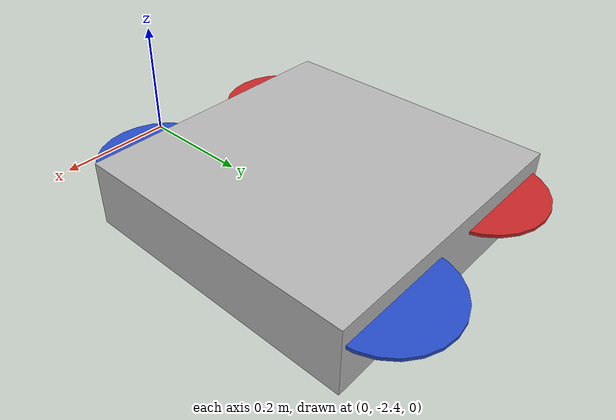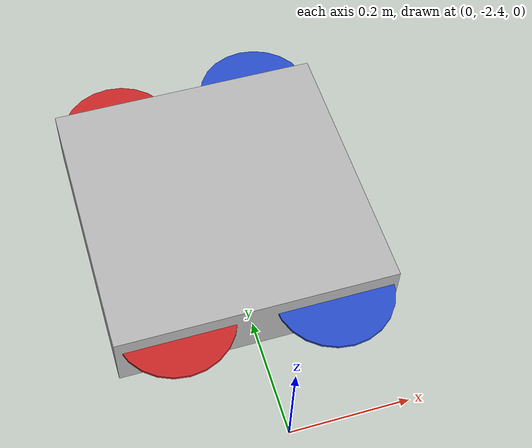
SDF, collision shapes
<?xml version="1.0" encoding="utf-8"?>
<sdf version='1.9'>
  <model name='X3'>
    <pose>0 -2 0.054632 0 -0 0</pose>
    <link name='X3/base_link'>
      <sensor name="ISACAntennaSensor" type="custom" ignition:type="ISACAntenna">
        <always_on>1</always_on>
        <update_rate>30</update_rate>
        <visualize>true</visualize>
        <ignition:ISACAntenna>
            <tx_power_dBm>20.0</tx_power_dBm>            <!-- high power to reach relays -->
            <path_loss_exponent>2.5</path_loss_exponent> <!-- mostly open space inside a building/field -->
            <fading_std>3.0</fading_std>                <!-- small fading since mostly static links -->
            <bandwidth_Hz>5e6</bandwidth_Hz>            <!-- medium bandwidth -->
            <noise_figure_dB>5.0</noise_figure_dB>      <!-- typical device NF -->
        </ignition:ISACAntenna>
      </sensor>
      <pose>0 0 0 0 -0 0</pose>
      <inertial>
        <pose>0 0 0 0 -0 0</pose>
        <mass>1.5</mass>
        <inertia>
          <ixx>0.034756299999999997</ixx>
          <ixy>0</ixy>
          <ixz>0</ixz>
          <iyy>0.070000000000000007</iyy>
          <iyz>0</iyz>
          <izz>0.097699999999999995</izz>
        </inertia>
      </inertial>
      <collision name='X3/base_link_inertia_collision'>
        <pose>0 0 0 0 -0 0</pose>
        <geometry>
          <box>
            <size>0.47 0.47 0.11</size>
          </box>
        </geometry>
        <surface>
          <friction>
            <ode/>
          </friction>
          <bounce/>
          <contact/>
        </surface>
      </collision>
      <visual name='X3/base_link_inertia_visual'>
        <pose>0 0 0 0 -0 0</pose>
        <geometry>
          <mesh>
            <scale>1 1 1</scale>
            <uri>https://fuel.gazebosim.org/1.0/openrobotics/models/x3 uav/4/files/meshes/x3.dae</uri>
          </mesh>
        </geometry>
      </visual>
      <enable_wind>true</enable_wind>
    </link>
    <link name='X3/rotor_0'>
      <pose>0.13 -0.22 0.023 -0 -0 -0</pose>
      <inertial>
        <pose>0 0 0 0 -0 0</pose>
        <mass>0.0050000000000000001</mass>
        <inertia>
          <ixx>9.7499999999999998e-07</ixx>
          <ixy>0</ixy>
          <ixz>0</ixz>
          <iyy>4.1704099999999999e-05</iyy>
          <iyz>0</iyz>
          <izz>4.2604100000000001e-05</izz>
        </inertia>
      </inertial>
      <collision name='X3/rotor_0_collision'>
        <pose>0 0 0 0 -0 0</pose>
        <geometry>
          <cylinder>
            <length>0.0050000000000000001</length>
            <radius>0.10000000000000001</radius>
          </cylinder>
        </geometry>
        <surface>
          <contact>
            <ode/>
          </contact>
          <friction>
            <ode/>
          </friction>
          <bounce/>
        </surface>
      </collision>
      <visual name='X3/rotor_0_visual'>
        <pose>0 0 0 0 -0 0</pose>
        <geometry>
          <mesh>
            <scale>0.1 0.1 0.1</scale>
            <uri>https://fuel.gazebosim.org/1.0/openrobotics/models/x3 uav/4/files/meshes/propeller_ccw.dae</uri>
          </mesh>
        </geometry>
        <material>
          <script>
            <name>Gazebo/Blue</name>
            <uri>file://media/materials/scripts/gazebo.material</uri>
          </script>
        </material>
      </visual>
      <gravity>true</gravity>
      <velocity_decay/>
      <enable_wind>true</enable_wind>
    </link>
    <joint name='X3/rotor_0_joint' type='revolute'>
      <child>X3/rotor_0</child>
      <parent>X3/base_link</parent>
      <axis>
        <xyz>0 0 1</xyz>
        <limit>
          <lower>-10000000000000000</lower>
          <upper>10000000000000000</upper>
          <effort>inf</effort>
          <velocity>inf</velocity>
          <stiffness>100000000</stiffness>
          <dissipation>1</dissipation>
        </limit>
        <dynamics>
          <spring_reference>0</spring_reference>
          <spring_stiffness>0</spring_stiffness>
          <damping>0</damping>
          <friction>0</friction>
        </dynamics>
      </axis>
      <pose>0 0 0 0 -0 0</pose>
    </joint>
    <link name='X3/rotor_1'>
      <pose>-0.13 0.2 0.023 -0 -0 -0</pose>
      <inertial>
        <pose>0 0 0 0 -0 0</pose>
        <mass>0.0050000000000000001</mass>
        <inertia>
          <ixx>9.7499999999999998e-07</ixx>
          <ixy>0</ixy>
          <ixz>0</ixz>
          <iyy>4.1704099999999999e-05</iyy>
          <iyz>0</iyz>
          <izz>4.2604100000000001e-05</izz>
        </inertia>
      </inertial>
      <collision name='X3/rotor_1_collision'>
        <pose>0 0 0 0 -0 0</pose>
        <geometry>
          <cylinder>
            <length>0.0050000000000000001</length>
            <radius>0.10000000000000001</radius>
          </cylinder>
        </geometry>
        <surface>
          <contact>
            <ode/>
          </contact>
          <friction>
            <ode/>
          </friction>
          <bounce/>
        </surface>
      </collision>
      <visual name='X3/rotor_1_visual'>
        <pose>0 0 0 0 -0 0</pose>
        <geometry>
          <mesh>
            <scale>0.1 0.1 0.1</scale>
            <uri>https://fuel.gazebosim.org/1.0/openrobotics/models/x3 uav/4/files/meshes/propeller_ccw.dae</uri>
          </mesh>
        </geometry>
        <material>
          <script>
            <name>Gazebo/Red</name>
            <uri>file://media/materials/scripts/gazebo.material</uri>
          </script>
        </material>
      </visual>
      <gravity>true</gravity>
      <velocity_decay/>
      <enable_wind>true</enable_wind>
    </link>
    <joint name='X3/rotor_1_joint' type='revolute'>
      <child>X3/rotor_1</child>
      <parent>X3/base_link</parent>
      <axis>
        <xyz>0 0 1</xyz>
        <limit>
          <lower>-10000000000000000</lower>
          <upper>10000000000000000</upper>
          <effort>inf</effort>
          <velocity>inf</velocity>
          <stiffness>100000000</stiffness>
          <dissipation>1</dissipation>
        </limit>
        <dynamics>
          <spring_reference>0</spring_reference>
          <spring_stiffness>0</spring_stiffness>
          <damping>0</damping>
          <friction>0</friction>
        </dynamics>
      </axis>
      <pose>0 0 0 0 -0 0</pose>
    </joint>
    <link name='X3/rotor_2'>
      <pose>0.13 0.22 0.023 -0 -0 -0</pose>
      <inertial>
        <pose>0 0 0 0 -0 0</pose>
        <mass>0.0050000000000000001</mass>
        <inertia>
          <ixx>9.7499999999999998e-07</ixx>
          <ixy>0</ixy>
          <ixz>0</ixz>
          <iyy>4.1704099999999999e-05</iyy>
          <iyz>0</iyz>
          <izz>4.2604100000000001e-05</izz>
        </inertia>
      </inertial>
      <collision name='X3/rotor_2_collision'>
        <pose>0 0 0 0 -0 0</pose>
        <geometry>
          <cylinder>
            <length>0.0050000000000000001</length>
            <radius>0.10000000000000001</radius>
          </cylinder>
        </geometry>
        <surface>
          <contact>
            <ode/>
          </contact>
          <friction>
            <ode/>
          </friction>
          <bounce/>
        </surface>
      </collision>
      <visual name='X3/rotor_2_visual'>
        <pose>0 0 0 0 -0 0</pose>
        <geometry>
          <mesh>
            <scale>0.1 0.1 0.1</scale>
            <uri>https://fuel.gazebosim.org/1.0/openrobotics/models/x3 uav/4/files/meshes/propeller_cw.dae</uri>
          </mesh>
        </geometry>
        <material>
          <script>
            <name>Gazebo/Blue</name>
            <uri>file://media/materials/scripts/gazebo.material</uri>
          </script>
        </material>
      </visual>
      <gravity>true</gravity>
      <velocity_decay/>
      <enable_wind>true</enable_wind>
    </link>
    <joint name='X3/rotor_2_joint' type='revolute'>
      <child>X3/rotor_2</child>
      <parent>X3/base_link</parent>
      <axis>
        <xyz>0 0 1</xyz>
        <limit>
          <lower>-10000000000000000</lower>
          <upper>10000000000000000</upper>
          <effort>inf</effort>
          <velocity>inf</velocity>
          <stiffness>100000000</stiffness>
          <dissipation>1</dissipation>
        </limit>
        <dynamics>
          <spring_reference>0</spring_reference>
          <spring_stiffness>0</spring_stiffness>
          <damping>0</damping>
          <friction>0</friction>
        </dynamics>
      </axis>
      <pose>0 0 0 0 -0 0</pose>
    </joint>
    <link name='X3/rotor_3'>
      <pose>-0.13 -0.2 0.023 -0 -0 -0</pose>
      <inertial>
        <pose>0 0 0 0 -0 0</pose>
        <mass>0.0050000000000000001</mass>
        <inertia>
          <ixx>9.7499999999999998e-07</ixx>
          <ixy>0</ixy>
          <ixz>0</ixz>
          <iyy>4.1704099999999999e-05</iyy>
          <iyz>0</iyz>
          <izz>4.2604100000000001e-05</izz>
        </inertia>
      </inertial>
      <collision name='X3/rotor_3_collision'>
        <pose>0 0 0 0 -0 0</pose>
        <geometry>
          <cylinder>
            <length>0.0050000000000000001</length>
            <radius>0.10000000000000001</radius>
          </cylinder>
        </geometry>
        <surface>
          <contact>
            <ode/>
          </contact>
          <friction>
            <ode/>
          </friction>
          <bounce/>
        </surface>
      </collision>
      <visual name='X3/rotor_3_visual'>
        <pose>0 0 0 0 -0 0</pose>
        <geometry>
          <mesh>
            <scale>0.1 0.1 0.1</scale>
            <uri>https://fuel.gazebosim.org/1.0/openrobotics/models/x3 uav/4/files/meshes/propeller_cw.dae</uri>
          </mesh>
        </geometry>
        <material>
          <script>
            <name>Gazebo/Red</name>
            <uri>file://media/materials/scripts/gazebo.material</uri>
          </script>
        </material>
      </visual>
      <gravity>true</gravity>
      <velocity_decay/>
      <enable_wind>true</enable_wind>
    </link>
    <joint name='X3/rotor_3_joint' type='revolute'>
      <child>X3/rotor_3</child>
      <parent>X3/base_link</parent>
      <axis>
        <xyz>0 0 1</xyz>
        <limit>
          <lower>-10000000000000000</lower>
          <upper>10000000000000000</upper>
          <effort>inf</effort>
          <velocity>inf</velocity>
          <stiffness>100000000</stiffness>
          <dissipation>1</dissipation>
        </limit>
        <dynamics>
          <spring_reference>0</spring_reference>
          <spring_stiffness>0</spring_stiffness>
          <damping>0</damping>
          <friction>0</friction>
        </dynamics>
      </axis>
      <pose>0 0 0 0 -0 0</pose>
    </joint>
    <plugin name='ignition::gazebo::systems::MulticopterMotorModel' filename='ignition-gazebo-multicopter-motor-model-system'>
      <robotNamespace>X3</robotNamespace>
      <jointName>X3/rotor_0_joint</jointName>
      <linkName>X3/rotor_0</linkName>
      <turningDirection>ccw</turningDirection>
      <timeConstantUp>0.0125</timeConstantUp>
      <timeConstantDown>0.025</timeConstantDown>
      <maxRotVelocity>800.0</maxRotVelocity>
      <motorConstant>8.54858e-06</motorConstant>
      <momentConstant>0.016</momentConstant>
      <commandSubTopic>gazebo/command/motor_speed</commandSubTopic>
      <motorNumber>0</motorNumber>
      <rotorDragCoefficient>8.06428e-05</rotorDragCoefficient>
      <rollingMomentCoefficient>1e-06</rollingMomentCoefficient>
      <motorSpeedPubTopic>motor_speed/0</motorSpeedPubTopic>
      <rotorVelocitySlowdownSim>10</rotorVelocitySlowdownSim>
      <motorType>velocity</motorType>
    </plugin>
    <plugin name='ignition::gazebo::systems::MulticopterMotorModel' filename='ignition-gazebo-multicopter-motor-model-system'>
      <robotNamespace>X3</robotNamespace>
      <jointName>X3/rotor_1_joint</jointName>
      <linkName>X3/rotor_1</linkName>
      <turningDirection>ccw</turningDirection>
      <timeConstantUp>0.0125</timeConstantUp>
      <timeConstantDown>0.025</timeConstantDown>
      <maxRotVelocity>800.0</maxRotVelocity>
      <motorConstant>8.54858e-06</motorConstant>
      <momentConstant>0.016</momentConstant>
      <commandSubTopic>gazebo/command/motor_speed</commandSubTopic>
      <motorNumber>1</motorNumber>
      <rotorDragCoefficient>8.06428e-05</rotorDragCoefficient>
      <rollingMomentCoefficient>1e-06</rollingMomentCoefficient>
      <motorSpeedPubTopic>motor_speed/1</motorSpeedPubTopic>
      <rotorVelocitySlowdownSim>10</rotorVelocitySlowdownSim>
      <motorType>velocity</motorType>
    </plugin>
    <plugin name='ignition::gazebo::systems::MulticopterMotorModel' filename='ignition-gazebo-multicopter-motor-model-system'>
      <robotNamespace>X3</robotNamespace>
      <jointName>X3/rotor_2_joint</jointName>
      <linkName>X3/rotor_2</linkName>
      <turningDirection>cw</turningDirection>
      <timeConstantUp>0.0125</timeConstantUp>
      <timeConstantDown>0.025</timeConstantDown>
      <maxRotVelocity>800.0</maxRotVelocity>
      <motorConstant>8.54858e-06</motorConstant>
      <momentConstant>0.016</momentConstant>
      <commandSubTopic>gazebo/command/motor_speed</commandSubTopic>
      <motorNumber>2</motorNumber>
      <rotorDragCoefficient>8.06428e-05</rotorDragCoefficient>
      <rollingMomentCoefficient>1e-06</rollingMomentCoefficient>
      <motorSpeedPubTopic>motor_speed/2</motorSpeedPubTopic>
      <rotorVelocitySlowdownSim>10</rotorVelocitySlowdownSim>
      <motorType>velocity</motorType>
    </plugin>
    <plugin name='ignition::gazebo::systems::MulticopterMotorModel' filename='ignition-gazebo-multicopter-motor-model-system'>
      <robotNamespace>X3</robotNamespace>
      <jointName>X3/rotor_3_joint</jointName>
      <linkName>X3/rotor_3</linkName>
      <turningDirection>cw</turningDirection>
      <timeConstantUp>0.0125</timeConstantUp>
      <timeConstantDown>0.025</timeConstantDown>
      <maxRotVelocity>800.0</maxRotVelocity>
      <motorConstant>8.54858e-06</motorConstant>
      <momentConstant>0.016</momentConstant>
      <commandSubTopic>gazebo/command/motor_speed</commandSubTopic>
      <motorNumber>3</motorNumber>
      <rotorDragCoefficient>8.06428e-05</rotorDragCoefficient>
      <rollingMomentCoefficient>1e-06</rollingMomentCoefficient>
      <motorSpeedPubTopic>motor_speed/3</motorSpeedPubTopic>
      <rotorVelocitySlowdownSim>10</rotorVelocitySlowdownSim>
      <motorType>velocity</motorType>
    </plugin>
    <plugin name='ignition::gazebo::systems::MulticopterVelocityControl' filename='ignition-gazebo-multicopter-control-system'>
      <robotNamespace>X3</robotNamespace>
      <enableSubTopic>enable</enableSubTopic>
      <comLinkName>X3/base_link</comLinkName>
      <velocityGain>2.7 2.7 2.7</velocityGain>
      <attitudeGain>2 3 0.15</attitudeGain>
      <angularRateGain>0.4 0.52 0.18</angularRateGain>
      <maximumLinearAcceleration>2 2 2</maximumLinearAcceleration>
      <maximumLinearVelocity>3 3 3</maximumLinearVelocity>
      <rotorConfiguration>
        <rotor>
          <jointName>X3/rotor_0_joint</jointName>
          <forceConstant>8.54858e-06</forceConstant>
          <momentConstant>0.016</momentConstant>
          <direction>1</direction>
        </rotor>
        <rotor>
          <jointName>X3/rotor_1_joint</jointName>
          <forceConstant>8.54858e-06</forceConstant>
          <momentConstant>0.016</momentConstant>
          <direction>1</direction>
        </rotor>
        <rotor>
          <jointName>X3/rotor_2_joint</jointName>
          <forceConstant>8.54858e-06</forceConstant>
          <momentConstant>0.016</momentConstant>
          <direction>-1</direction>
        </rotor>
        <rotor>
          <jointName>X3/rotor_3_joint</jointName>
          <forceConstant>8.54858e-06</forceConstant>
          <momentConstant>0.016</momentConstant>
          <direction>-1</direction>
        </rotor>
      </rotorConfiguration>
    </plugin>
    <plugin name='ignition::gazebo::systems::OdometryPublisher' filename='ignition-gazebo-odometry-publisher-system'>
      <odom_topic>/X3/odometry</odom_topic>
      <dimensions>3</dimensions>
    </plugin>
    <static>false</static>
    <self_collide>false</self_collide>
  </model>
</sdf>
